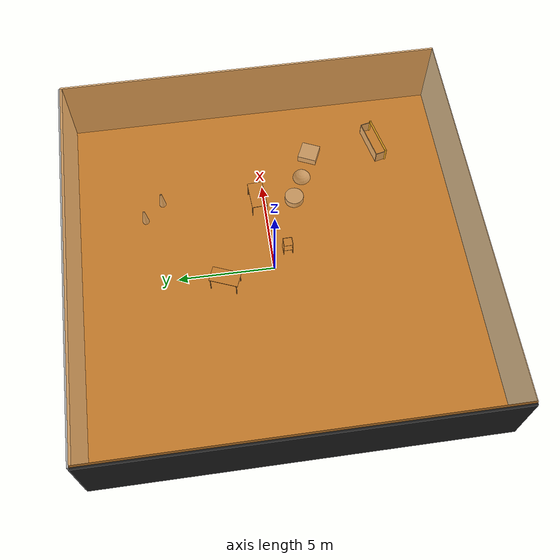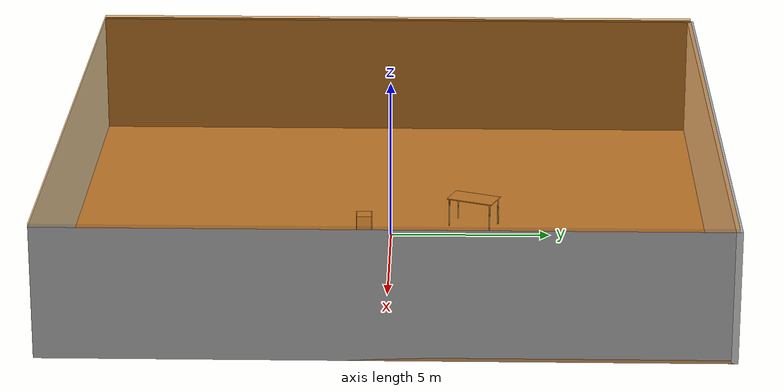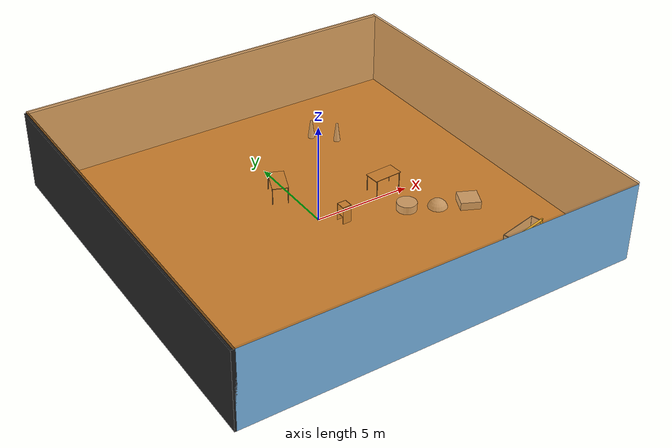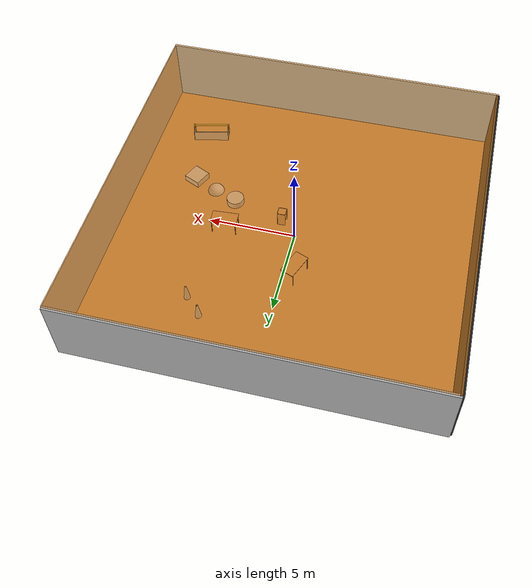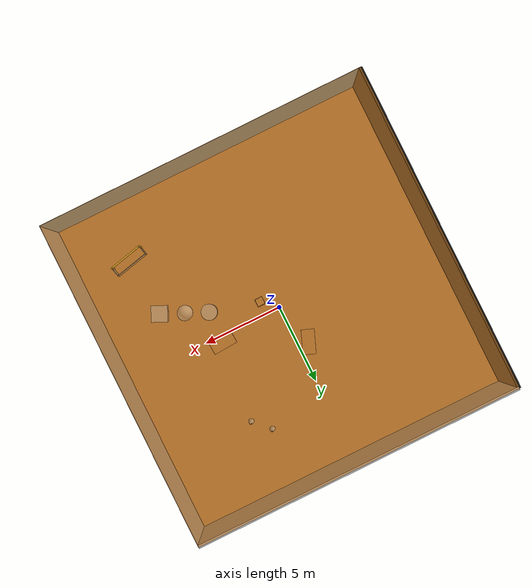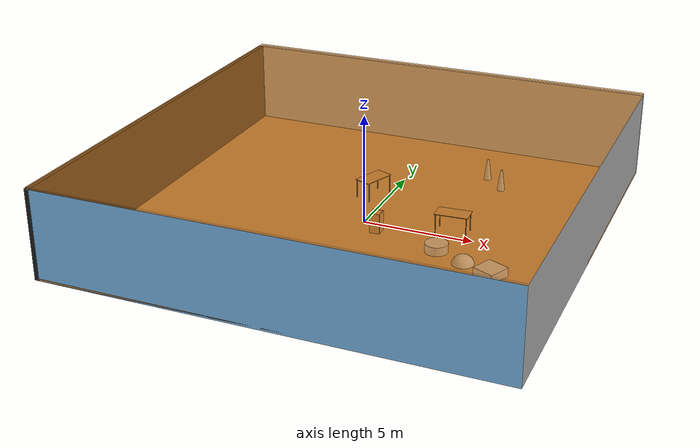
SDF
<sdf version="1.4">
 <world name="default">
  <physics type="ode">
   <max_step_size>0.001</max_step_size>
   <real_time_factor>1</real_time_factor>
   <real_time_update_rate>1000</real_time_update_rate>
   <gravity>0 0 -9.8</gravity>
  </physics>
  <scene><ambient>0.4 0.4 0.4 1</ambient><background>0.7 0.7 0.7 1</background><shadows>1</shadows></scene>
  <model name="Surrounding">
   <static>1</static>
   <link name="Ceiling">
    <collision name="Ceiling_Collision"><geometry><box><size>20 20 0.1</size></box></geometry></collision>
    <visual name="Ceiling_Visual">
     <geometry><box><size>20 20 0.1</size></box></geometry>
     <material>
      <script>
       <uri>file://media/materials/scripts/gazebo.material</uri>
       <name>Gazebo/OrangeTransparent</name>
      </script>
     </material>
    </visual>
    <pose>0 0 4.05 0 0 0</pose>
   </link>
   <link name="Wall_South">
    <collision name="Wall_South_Collision">
     <geometry><box><size>20 0 4</size></box></geometry>
     <pose>0 0 2 0 -0 0</pose>
    </collision>
    <visual name="Wall_South_Visual">
     <pose>0 0 2 0 -0 0</pose>
     <geometry><box><size>20 0 4</size></box></geometry>
     <material>
      <script><uri>file://media/materials/scripts/gazebo.material</uri><name>Gazebo/SkyBlue</name></script>
     </material>
    </visual>
    <velocity_decay><linear>0</linear><angular>0</angular></velocity_decay>
    <pose>0 -10 0 0 -0 0</pose>
   </link>
   <link name="Wall_East">
    <collision name="Wall_21_Collision">
     <geometry><box><size>20 0 4</size></box></geometry>
     <pose>0 0 2 0 -0 0</pose>
    </collision>
    <visual name="Wall_21_Visual">
     <pose>0 0 2 0 -0 0</pose>
     <geometry><box><size>20 0 4</size></box></geometry>
     <material>
      <script><uri>file://media/materials/scripts/gazebo.material</uri><name>Gazebo/Grey</name></script>
     </material>
    </visual>
    <velocity_decay><linear>0</linear><angular>0</angular></velocity_decay>
    <pose>10 0 0 0 -0 1.5708</pose>
   </link>
   <link name="Wall_North">
    <collision name="Wall_22_Collision">
     <geometry><box><size>20 0.2 4</size></box></geometry>
     <pose>0 0 2 0 -0 0</pose>
    </collision>
    <visual name="Wall_22_Visual">
     <pose>0 0 2 0 -0 0</pose>
     <geometry><box><size>20 0.2 4</size></box></geometry>
     <material>
      <script><uri>file://media/materials/scripts/gazebo.material</uri><name>Gazebo/CloudySky</name></script>
     </material>
    </visual>
    <velocity_decay><linear>0</linear><angular>0</angular></velocity_decay>
    <pose>0 10 0 0 -0 0</pose>
   </link>
   <link name="Wall_West">
    <collision name="Wall_23_Collision">
     <geometry><box><size>20 0.2 4</size></box></geometry>
     <pose>0 0 2 0 -0 0</pose>
    </collision>
    <visual name="Wall_23_Visual">
     <pose>0 0 2 0 -0 0</pose>
     <geometry><box><size>20 0.2 4</size></box></geometry>
     <material>
      <script><uri>file://media/materials/scripts/gazebo.material</uri><name>Gazebo/FlatBlack</name></script>
     </material>
    </visual>
    <velocity_decay><linear>0</linear><angular>0</angular></velocity_decay>
    <pose>-10 0 0 0 0 -1.5708</pose>
   </link>
   <link name="Ground_link">
    <collision name="collision">
     <pose>0 0 .05 0 -0 0</pose>
     <geometry><box><size>20 20 0.1</size></box></geometry>
    </collision>
    <visual name="visual">
     <pose>0 0 .05 0 -0 0</pose>
     <geometry><box><size>20 20 0.1</size></box></geometry>
     <material>
      <script><uri>file://media/materials/scripts/gazebo.material</uri><name>Gazebo/Wood</name></script>
     </material>
    </visual>
   </link>
   <static>1</static>
  </model>
  <spherical_coordinates>
   <surface_model>EARTH_WGS84</surface_model>
   <latitude_deg>0</latitude_deg>
   <longitude_deg>0</longitude_deg>
   <elevation>0</elevation>
   <heading_deg>0</heading_deg>
  </spherical_coordinates>
  <light name="lightball_0" type="diffuse">
   <diffuse>0.8 0.8 0.8 1</diffuse>
   <specular>0.2 0.2 0.2 1</specular>
   <attenuation>
    <range>100</range>
    <constant>0.7</constant>
    <linear>0.01</linear>
    <quadratic>0.001</quadratic>
   </attenuation>
   <direction>-0.5 0.1 -0.9</direction>
   <pose>6.97297907597 6.3234564338 3.05575133787 0 0 0</pose>
  </light>
  <light name="lightball_1" type="diffuse">
   <diffuse>0.8 0.8 0.8 1</diffuse>
   <specular>0.2 0.2 0.2 1</specular>
   <attenuation>
    <range>100</range>
    <constant>0.7</constant>
    <linear>0.01</linear>
    <quadratic>0.001</quadratic>
   </attenuation>
   <direction>-0.5 0.1 -0.9</direction>
   <pose>-9.14426704888 -3.11359438996 1.91380805576 0 0 0</pose>
  </light>
  <light name="lightball_2" type="diffuse">
   <diffuse>0.8 0.8 0.8 1</diffuse>
   <specular>0.2 0.2 0.2 1</specular>
   <attenuation>
    <range>100</range>
    <constant>0.7</constant>
    <linear>0.01</linear>
    <quadratic>0.001</quadratic>
   </attenuation>
   <direction>-0.5 0.1 -0.9</direction>
   <pose>-4.39618333456 -9.51695132 3.52550080489 0 0 0</pose>
  </light>
  <include><uri>model://table</uri><pose>-0.630326866538 2.60959455582 0 0 0 1.19127049149</pose></include>
  <include><uri>model://cabinet</uri><pose>0.902842496481 -0.814915453084 0 0 0 0.0224649066735</pose></include>
  <include>
   <uri>model://textured_shapes</uri>
   <pose>5.30136438045 -2.23337189528 0 0 0 1.14551503736</pose>
  </include>
  <include><uri>model://table</uri><pose>3.96681569354 0.383319823288 0 0 0 0.0619795468822</pose></include>
  <include>
   <uri>model://construction_cone</uri>
   <pose>4.6069633685 5.44591582849 0 0 0 1.70099288931</pose>
  </include>
  <include>
   <uri>model://construction_cone</uri>
   <pose>3.66431507727 6.41692289657 0 0 0 0.988274108036</pose>
  </include>
  <include>
   <uri>model://robocup_3Dsim_goal</uri>
   <pose>6.93336576774 -6.75566362064 0 0 0 1.79332285913</pose>
  </include>
 </world>
</sdf>

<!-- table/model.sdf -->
<sdf version="1.5">
  <model name="table">
    <static>true</static>
    <link name="link">
      <collision name="surface">
        <pose>0 0 1.0 0 0 0</pose>
        <geometry>
          <box>
            <size>1.5 0.8 0.03</size>
          </box>
        </geometry>
        <surface>
          <friction>
            <ode>
              <mu>0.6</mu>
              <mu2>0.6</mu2>
            </ode>
          </friction>
        </surface>
      </collision>
      <visual name="visual1">
        <pose>0 0 1.0 0 0 0</pose>
        <geometry>
          <box>
            <size>1.5 0.8 0.03</size>
          </box>
        </geometry>
        <material>
          <script>
            <uri>model://media/materials/scripts/gazebo.material</uri>
            <name>Gazebo/Wood</name>
          </script>
        </material>
      </visual>
      <collision name="front_left_leg">
        <pose>0.68 0.38 0.5 0 0 0</pose>
        <geometry>
          <cylinder>
            <radius>0.02</radius>
            <length>1.0</length>
          </cylinder>
        </geometry>
      </collision>
      <visual name="front_left_leg">
        <pose>0.68 0.38 0.5 0 0 0</pose>
        <geometry>
          <cylinder>
            <radius>0.02</radius>
            <length>1.0</length>
          </cylinder>
        </geometry>
        <material>
          <script>
            <uri>model://media/materials/scripts/gazebo.material</uri>
            <name>Gazebo/Grey</name>
          </script>
        </material>
      </visual>
      <collision name="front_right_leg">
        <pose>0.68 -0.38 0.5 0 0 0</pose>
        <geometry>
          <cylinder>
            <radius>0.02</radius>
            <length>1.0</length>
          </cylinder>
        </geometry>
      </collision>
      <visual name="front_right_leg">
        <pose>0.68 -0.38 0.5 0 0 0</pose>
        <geometry>
          <cylinder>
            <radius>0.02</radius>
            <length>1.0</length>
          </cylinder>
        </geometry>
        <material>
          <script>
            <uri>model://media/materials/scripts/gazebo.material</uri>
            <name>Gazebo/Grey</name>
          </script>
        </material>
      </visual>
      <collision name="back_right_leg">
        <pose>-0.68 -0.38 0.5 0 0 0</pose>
        <geometry>
          <cylinder>
            <radius>0.02</radius>
            <length>1.0</length>
          </cylinder>
        </geometry>
      </collision>
      <visual name="back_right_leg">
        <pose>-0.68 -0.38 0.5 0 0 0</pose>
        <geometry>
          <cylinder>
            <radius>0.02</radius>
            <length>1.0</length>
          </cylinder>
        </geometry>
        <material>
          <script>
            <uri>model://media/materials/scripts/gazebo.material</uri>
            <name>Gazebo/Grey</name>
          </script>
        </material>
      </visual>
      <collision name="back_left_leg">
        <pose>-0.68 0.38 0.5 0 0 0</pose>
        <geometry>
          <cylinder>
            <radius>0.02</radius>
            <length>1.0</length>
          </cylinder>
        </geometry>
      </collision>
      <visual name="back_left_leg">
        <pose>-0.68 0.38 0.5 0 0 0</pose>
        <geometry>
          <cylinder>
            <radius>0.02</radius>
            <length>1.0</length>
          </cylinder>
        </geometry>
        <material>
          <script>
            <uri>model://media/materials/scripts/gazebo.material</uri>
            <name>Gazebo/Grey</name>
          </script>
        </material>
      </visual>
    </link>
  </model>
</sdf>

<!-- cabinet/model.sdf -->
<sdf version="1.5">
  <model name="cabinet">
    <static>true</static>
    <link name="cabinet_bottom_plate">
      <inertial>
        <pose>0 0 -1 0 0 0</pose>
        <inertia>
          <ixx>2.050000</ixx>
          <ixy>0</ixy>
          <ixz>0</ixz>
          <iyy>2.050000</iyy>
          <iyz>0</iyz>
          <izz>2.050000</izz>
        </inertia>
        <mass>25.000000</mass>
      </inertial>
      <collision name="cabinet_bottom_plate_geom">
        <pose>0 0 0.010000 0 0 0</pose>
        <geometry>
          <box>
            <size>0.450000 0.450000 0.020000</size>
          </box>
        </geometry>
      </collision>
      <visual name="cabinet_bottom_plate_geom_visual">
        <pose>0 0 0.010000 0 0 0</pose>
        <geometry>
          <box>
            <size>0.450000 0.450000 0.020000</size>
          </box>
        </geometry>
        <material>
          <script>
            <uri>model://media/materials/scripts/gazebo.material</uri>
            <name>Gazebo/Wood</name>
          </script>
        </material>
      </visual>
      <collision name="cabinet_bottom_plate_geom_cabinet_back_plate">
        <pose>0.235000 0 0.510000 0 0 0</pose>
        <geometry>
          <box>
            <size>0.020000 0.450000 1.020000</size>
          </box>
        </geometry>
      </collision>
      <visual name="cabinet_bottom_plate_geom_cabinet_back_plate_visual">
        <pose>0.235000 0 0.510000 0 0 0</pose>
        <geometry>
          <box>
            <size>0.020000 0.450000 1.020000</size>
          </box>
        </geometry>
        <material>
          <script>
            <uri>model://media/materials/scripts/gazebo.material</uri>
            <name>Gazebo/Wood</name>
          </script>
        </material>
      </visual>
      <collision name="cabinet_bottom_plate_geom_cabinet_left_plate">
        <pose>0 0.235000 0.510000 0 0 0</pose>
        <geometry>
          <box>
            <size>0.450000 0.020000 1.020000</size>
          </box>
        </geometry>
      </collision>
      <visual name="cabinet_bottom_plate_geom_cabinet_left_plate_visual">
        <pose>0 0.235000 0.510000 0 0 0</pose>
        <geometry>
          <box>
            <size>0.450000 0.020000 1.020000</size>
          </box>
        </geometry>
        <material>
          <script>
            <uri>model://media/materials/scripts/gazebo.material</uri>
            <name>Gazebo/Wood</name>
          </script>
        </material>
      </visual>
      <collision name="cabinet_bottom_plate_geom_cabinet_middle_plate">
        <pose>0 0 0.510000 0 0 0</pose>
        <geometry>
          <box>
            <size>0.450000 0.450000 0.020000</size>
          </box>
        </geometry>
      </collision>
      <visual name="cabinet_bottom_plate_geom_cabinet_middle_plate_visual">
        <pose>0 0 0.510000 0 0 0</pose>
        <geometry>
          <box>
            <size>0.450000 0.450000 0.020000</size>
          </box>
        </geometry>
        <material>
          <script>
            <uri>model://media/materials/scripts/gazebo.material</uri>
            <name>Gazebo/Wood</name>
          </script>
        </material>
      </visual>
      <collision name="cabinet_bottom_plate_geom_cabinet_right_plate">
        <pose>0 -0.235000 0.510000 0 0 0</pose>
        <geometry>
          <box>
            <size>0.450000 0.020000 1.020000</size>
          </box>
        </geometry>
      </collision>
      <visual name="cabinet_bottom_plate_geom_cabinet_right_plate_visual">
        <pose>0 -0.235000 0.510000 0 0 0</pose>
        <geometry>
          <box>
            <size>0.450000 0.020000 1.020000</size>
          </box>
        </geometry>
        <material>
          <script>
            <uri>model://media/materials/scripts/gazebo.material</uri>
            <name>Gazebo/Wood</name>
          </script>
        </material>
      </visual>
      <collision name="cabinet_bottom_plate_geom_cabinet_top_plate">
        <pose>0 0 1.010000 0 0 0</pose>
        <geometry>
          <box>
            <size>0.450000 0.450000 0.020000</size>
          </box>
        </geometry>
      </collision>
      <visual name="cabinet_bottom_plate_geom_cabinet_top_plate_visual">
        <pose>0 0 1.010000 0 0 0</pose>
        <geometry>
          <box>
            <size>0.450000 0.450000 0.020000</size>
          </box>
        </geometry>
        <material>
          <script>
            <uri>model://media/materials/scripts/gazebo.material</uri>
            <name>Gazebo/Wood</name>
          </script>
        </material>
      </visual>
    </link>
  </model>
</sdf>

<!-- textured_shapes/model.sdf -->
<sdf version="1.6">
  <model name="textured_shapes">
    <pose>0 0 0.5 0 0 0</pose>
    <link name="box">
      <pose>0 -1.5 0 0 0 0</pose>
      <collision name="collision">
        <geometry>
          <box>
            <size>1 1 1</size>
          </box>
        </geometry>
      </collision>
      <visual name="visual">
        <geometry>
          <box>
            <size>1 1 1</size>
          </box>
        </geometry>
        <material>
          <script>
            <uri>model://../model_source/models/textured_shapes/materials/scripts</uri>
            <uri>model://../model_source/models/textured_shapes/materials/textures</uri>
            <name>TexturedShape/Squares</name>
          </script>
        </material>
      </visual>
    </link>
    <link name="sphere">
      <collision name="collision">
        <geometry>
          <sphere>
            <radius>0.5</radius>
          </sphere>
        </geometry>
      </collision>
      <visual name="visual">
        <geometry>
          <sphere>
            <radius>0.5</radius>
          </sphere>
        </geometry>
        <material>
          <script>
            <uri>model://../model_source/models/textured_shapes/materials/scripts</uri>
            <uri>model://../model_source/models/textured_shapes/materials/textures</uri>
            <name>TexturedShape/Squares</name>
          </script>
        </material>
      </visual>
    </link>
    <link name="cylinder">
      <pose>0 1.5 0 0 0 0</pose>
      <collision name="collision">
        <geometry>
          <cylinder>
            <radius>0.5</radius>
            <length>1</length>
          </cylinder>
        </geometry>
      </collision>
      <visual name="visual">
        <geometry>
          <cylinder>
            <radius>0.5</radius>
            <length>1</length>
          </cylinder>
        </geometry>
        <material>
          <script>
            <uri>model://../model_source/models/textured_shapes/materials/scripts</uri>
            <uri>model://../model_source/models/textured_shapes/materials/textures</uri>
            <name>TexturedShape/Squares</name>
          </script>
        </material>
      </visual>
    </link>
  </model>
</sdf>

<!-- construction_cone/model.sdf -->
<sdf version="1.5">
  <model name="Construction Cone">
    <link name="link">
      <collision name="collision">
        <geometry>
          <mesh>
            <scale>10 10 10</scale>
            <uri>file://isr-testbed/construction_cone/meshes/construction_cone.dae</uri>
          </mesh>
        </geometry>
      </collision>
      <visual name="visual">
        <geometry>
          <mesh>
            <scale>10 10 10</scale>
            <uri>file://isr-testbed/construction_cone/meshes/construction_cone.dae</uri>
          </mesh>
        </geometry>
      </visual>
    </link>
  </model>
</sdf>

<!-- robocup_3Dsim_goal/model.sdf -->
<sdf version="1.5">
  <model name="robocup_3d_goal">
    <static>true</static>
    <link name="left_post">
      <pose>0 1.05 0.45 0 0 0</pose>
      <collision name="collision">
        <geometry>
          <cylinder>
            <radius>0.05</radius>
            <length>0.9</length>
          </cylinder>
        </geometry>
      </collision>
      <visual name="visual">
        <geometry>
          <cylinder>
            <radius>0.05</radius>
            <length>0.9</length>
          </cylinder>
        </geometry>
        <material>
          <script>
            <uri>file://media/materials/scripts/gazebo.material</uri>
            <name>Gazebo/ZincYellow</name>
          </script>
        </material>
      </visual>
    </link>
    <link name="left_support_horiz_lower">
      <pose>0.30 1.05 0.01 0 0 0</pose>
      <collision name="collision">
        <geometry>
          <box>
            <size>0.50 0.02 0.02</size>
          </box>
        </geometry>
      </collision>
      <visual name="visual">
        <geometry>
          <box>
            <size>0.50 0.02 0.02</size>
          </box>
        </geometry>
        <material>
          <script>
            <uri>file://media/materials/scripts/gazebo.material</uri>
            <name>Gazebo/White</name>
          </script>
        </material>
      </visual>
    </link>
    <link name="left_support_horiz_upper">
      <pose>0.30 1.05 0.79 0 0 0</pose>
      <collision name="collision">
        <geometry>
          <box>
            <size>0.50 0.02 0.02</size>
          </box>
        </geometry>
      </collision>
      <visual name="visual">
        <geometry>
          <box>
            <size>0.50 0.02 0.02</size>
          </box>
        </geometry>
        <material>
          <script>
            <uri>file://media/materials/scripts/gazebo.material</uri>
            <name>Gazebo/White</name>
          </script>
        </material>
      </visual>
    </link>
    <link name="left_support_vertical">
      <pose>0.56 1.05 0.4 0 1.5708 0</pose>
      <collision name="collision">
        <geometry>
          <box>
            <size>0.80 0.02 0.02</size>
          </box>
        </geometry>
      </collision>
      <visual name="visual">
        <geometry>
          <box>
            <size>0.80 0.02 0.02</size>
          </box>
        </geometry>
        <material>
          <script>
            <uri>file://media/materials/scripts/gazebo.material</uri>
            <name>Gazebo/White</name>
          </script>
        </material>
      </visual>
    </link>
    <link name="right_support_horiz_lower">
      <pose>0.30 -1.05 0.01 0 0 0</pose>
      <collision name="collision">
        <geometry>
          <box>
            <size>0.50 0.02 0.02</size>
          </box>
        </geometry>
      </collision>
      <visual name="visual">
        <geometry>
          <box>
            <size>0.50 0.02 0.02</size>
          </box>
        </geometry>
        <material>
          <script>
            <uri>file://media/materials/scripts/gazebo.material</uri>
            <name>Gazebo/White</name>
          </script>
        </material>
      </visual>
    </link>
    <link name="right_support_horiz_upper">
      <pose>0.30 -1.05 0.79 0 0 0</pose>
      <collision name="collision">
        <geometry>
          <box>
            <size>0.50 0.02 0.02</size>
          </box>
        </geometry>
      </collision>
      <visual name="visual">
        <geometry>
          <box>
            <size>0.50 0.02 0.02</size>
          </box>
        </geometry>
        <material>
          <script>
            <uri>file://media/materials/scripts/gazebo.material</uri>
            <name>Gazebo/White</name>
          </script>
        </material>
      </visual>
    </link>
    <link name="right_support_vertical">
      <pose>0.56 -1.05 0.4 0 1.5708 0</pose>
      <collision name="collision">
        <geometry>
          <box>
            <size>0.80 0.02 0.02</size>
          </box>
        </geometry>
      </collision>
      <visual name="visual">
        <geometry>
          <box>
            <size>0.80 0.02 0.02</size>
          </box>
        </geometry>
        <material>
          <script>
            <uri>file://media/materials/scripts/gazebo.material</uri>
            <name>Gazebo/White</name>
          </script>
        </material>
      </visual>
    </link>
    <link name="center_support_horiz_lower">
      <pose>0.56 0 0.01 0 1.5708 0</pose>
      <collision name="collision">
        <geometry>
          <box>
            <size>0.02 2.08 0.02</size>
          </box>
        </geometry>
      </collision>
      <visual name="visual">
        <geometry>
          <box>
            <size>0.02 2.08 0.02</size>
          </box>
        </geometry>
        <material>
          <script>
            <uri>file://media/materials/scripts/gazebo.material</uri>
            <name>Gazebo/White</name>
          </script>
        </material>
      </visual>
    </link>
    <link name="center_support_horiz_upper">
      <pose>0.56 0 0.79 0 1.5708 0</pose>
      <collision name="collision">
        <geometry>
          <box>
            <size>0.02 2.08 0.02</size>
          </box>
        </geometry>
      </collision>
      <visual name="visual">
        <geometry>
          <box>
            <size>0.02 2.08 0.02</size>
          </box>
        </geometry>
        <material>
          <script>
            <uri>file://media/materials/scripts/gazebo.material</uri>
            <name>Gazebo/White</name>
          </script>
        </material>
      </visual>
    </link>
    <link name="right_post">
      <pose>0 -1.05 0.45 0 0 0</pose>
      <collision name="collision">
        <geometry>
          <cylinder>
            <radius>0.05</radius>
            <length>0.9</length>
          </cylinder>
        </geometry>
      </collision>
      <visual name="visual">
        <geometry>
          <cylinder>
            <radius>0.05</radius>
            <length>0.9</length>
          </cylinder>
        </geometry>
        <material>
          <script>
            <uri>file://media/materials/scripts/gazebo.material</uri>
            <name>Gazebo/ZincYellow</name>
          </script>
        </material>
      </visual>
    </link>
    <link name="crossbar">
      <pose>0 0 0.85 1.57 1.57 0</pose>
      <collision name="collision">
        <geometry>
          <cylinder>
            <radius>0.05</radius>
            <length>2.0</length>
          </cylinder>
        </geometry>
      </collision>
      <visual name="visual">
        <geometry>
          <cylinder>
            <radius>0.05</radius>
            <length>2.0</length>
          </cylinder>
        </geometry>
        <material>
          <script>
            <uri>file://media/materials/scripts/gazebo.material</uri>
            <name>Gazebo/ZincYellow</name>
          </script>
        </material>
      </visual>
    </link>
    <link name="center_net">
      <pose>0.56 0 0.40 0 0 0</pose>
      <collision name="collision">
        <geometry>
          <box>
            <size>0.01 2.1 0.80</size>
          </box>
        </geometry>
      </collision>
      <visual name="visual">
        <geometry>
          <box>
            <size>0.01 2.1 0.80</size>
          </box>
        </geometry>
        <material>
          <script>
            <uri>model://../model_source/models/robocup09_spl_field/materials/scripts/</uri>
            <uri>model://../model_source/models/robocup09_spl_field/materials/textures/</uri>
            <name>RoboCup/Net</name>
          </script>
        </material>
      </visual>
    </link>
    <link name="left_net">
      <pose>0.30 1.05 0.40 0 0 0</pose>
      <collision name="collision">
        <geometry>
          <box>
            <size>0.50 0.01 0.76</size>
          </box>
        </geometry>
      </collision>
      <visual name="visual">
        <geometry>
          <box>
            <size>0.50 0.01 0.76</size>
          </box>
        </geometry>
        <material>
          <script>
            <uri>model://../model_source/models/robocup09_spl_field/materials/scripts/</uri>
            <uri>model://../model_source/models/robocup09_spl_field/materials/textures/</uri>
            <name>RoboCup/Net</name>
          </script>
        </material>
      </visual>
    </link>
    <link name="right_net">
      <pose>0.30 -1.05 0.40 0 0 0</pose>
      <collision name="collision">
        <geometry>
          <box>
            <size>0.50 0.01 0.76</size>
          </box>
        </geometry>
      </collision>
      <visual name="visual">
        <geometry>
          <box>
            <size>0.50 0.01 0.76</size>
          </box>
        </geometry>
        <material>
          <script>
            <uri>model://../model_source/models/robocup09_spl_field/materials/scripts/</uri>
            <uri>model://../model_source/models/robocup09_spl_field/materials/textures/</uri>
            <name>RoboCup/Net</name>
          </script>
        </material>
      </visual>
    </link>
  </model>
</sdf>
